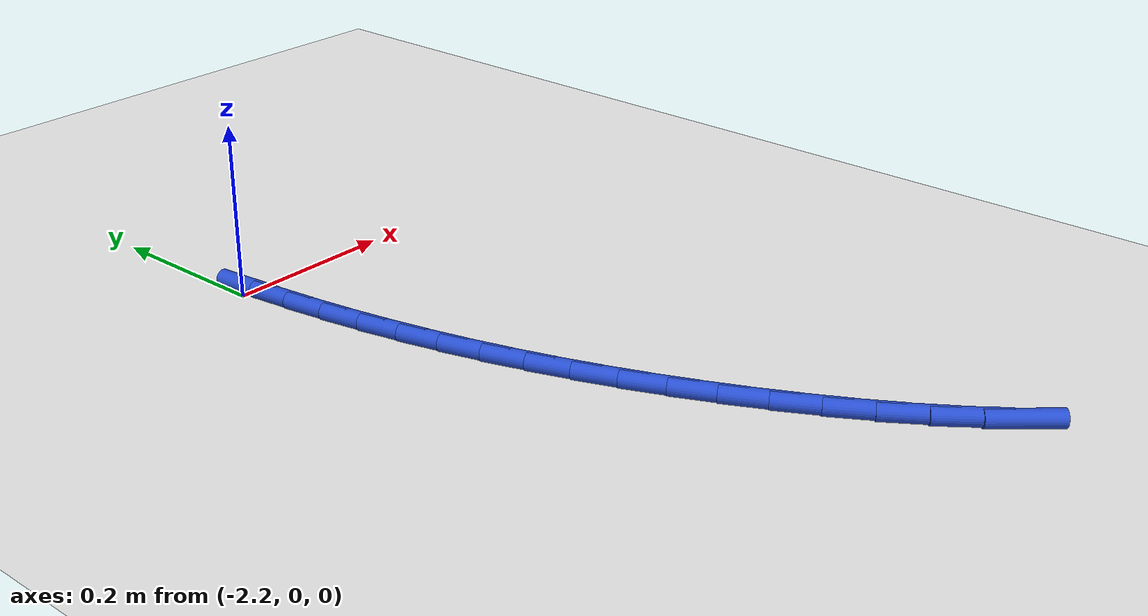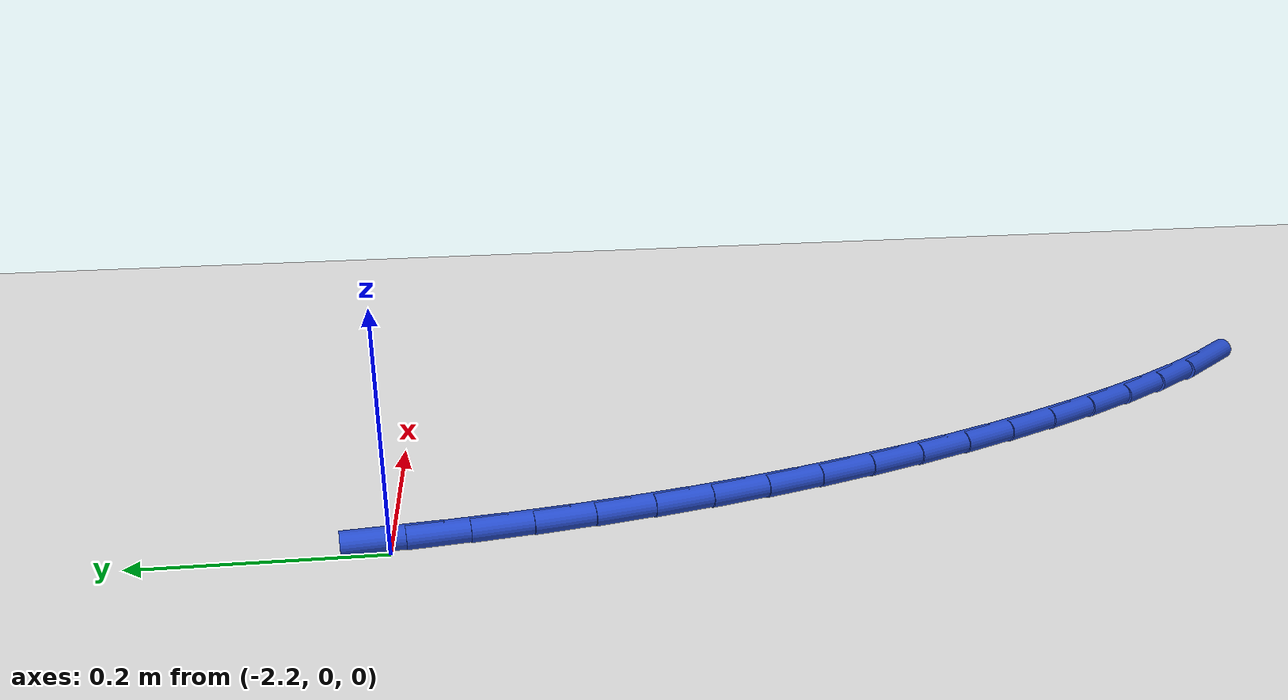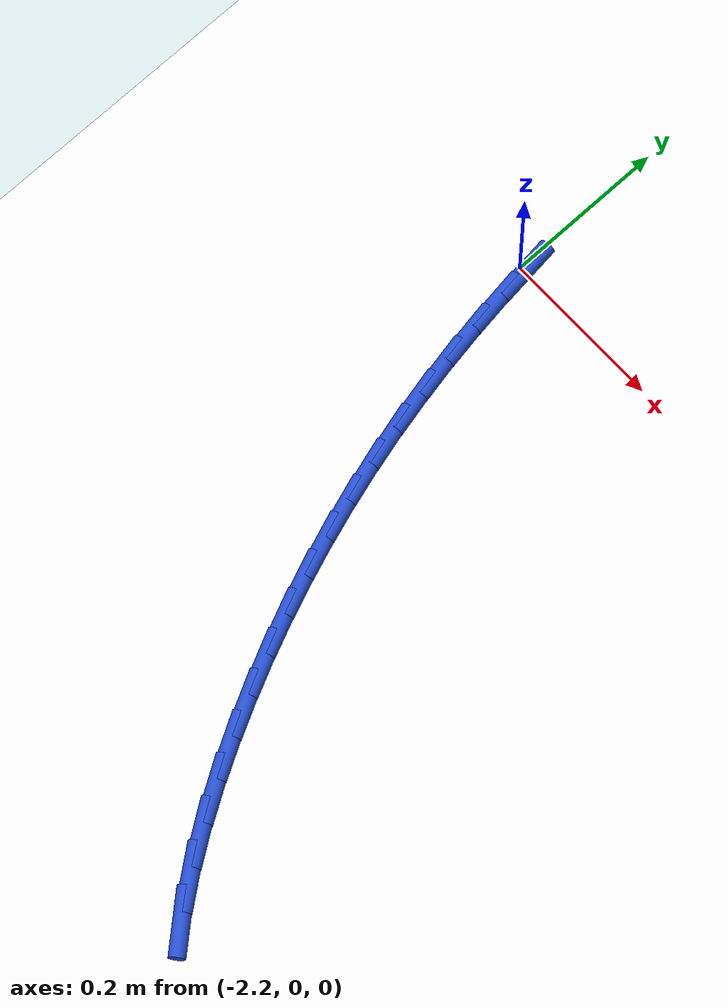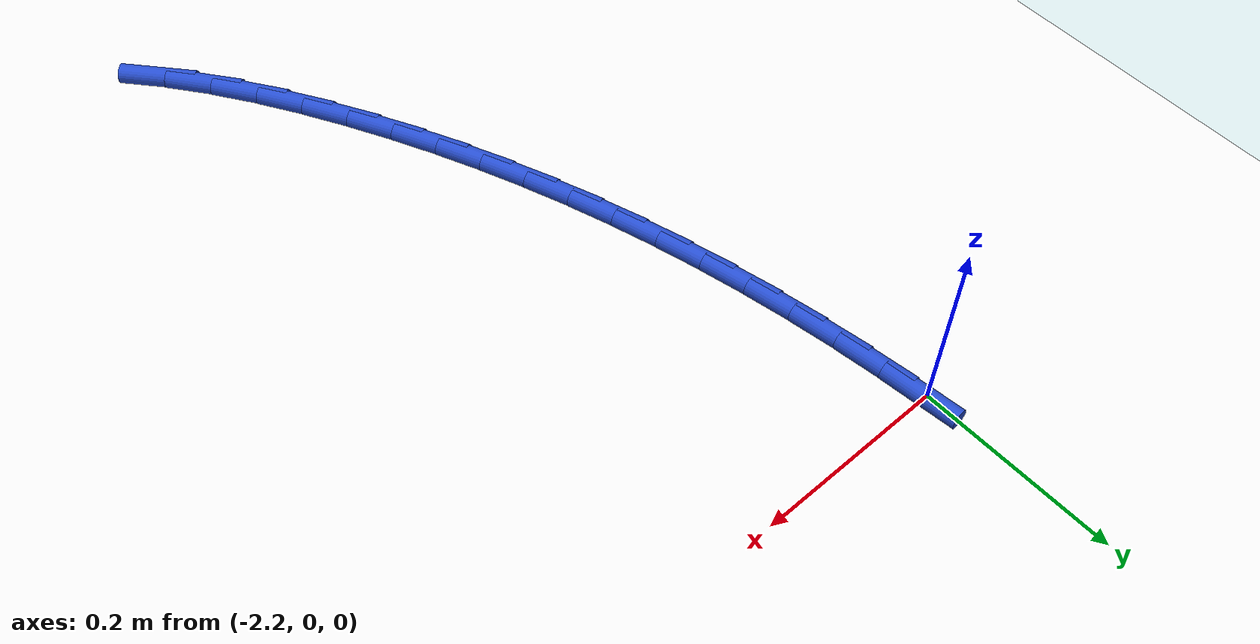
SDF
<sdf version="1.6">
 <world name="default">
  <model name="ground_plane">
   <static>1</static>
   <link name="link">
    <collision name="collision">
     <geometry><plane><normal>0 0 1</normal><size>100 100</size></plane></geometry>
     <surface><friction><ode><mu>100</mu><mu2>50</mu2></ode></friction></surface>
    </collision>
    <visual name="visual">
     <cast_shadows>0</cast_shadows>
     <geometry><plane><normal>0 0 1</normal><size>100 100</size></plane></geometry>
     <material>
      <script><uri>file://media/materials/scripts/gazebo.material</uri><name>Gazebo/WhiteGlow</name></script>
     </material>
    </visual>
   </link>
  </model>
  <model name="line">
   <link name="link_70">
    <pose>-2.1911638966875233 -0.0013804662618174858 0.01 0 1.57 -1.4591810888252337</pose>
    <collision name="collision">
     <geometry><cylinder><radius>0.01</radius><length>0.08</length></cylinder></geometry>
    </collision>
    <visual name="visual">
     <material>
      <script><name>Gazebo/Blue</name><uri>file://media/materials/scripts/gazebo.material</uri></script>
     </material>
     <geometry><cylinder><radius>0.01</radius><length>0.08</length></cylinder></geometry>
    </visual>
   </link>
   <link name="link_71">
    <pose>-2.1856029158798402 -0.05099617177252678 0.01 0 1.57 -1.4303888919285477</pose>
    <collision name="collision">
     <geometry><cylinder><radius>0.01</radius><length>0.08</length></cylinder></geometry>
    </collision>
    <visual name="visual">
     <material>
      <script><name>Gazebo/Blue</name><uri>file://media/materials/scripts/gazebo.material</uri></script>
     </material>
     <geometry><cylinder><radius>0.01</radius><length>0.08</length></cylinder></geometry>
    </visual>
   </link>
   <link name="link_72">
    <pose>-2.17864510572064 -0.1002245284883883 0.01 0 1.57 -1.4011248757612391</pose>
    <collision name="collision">
     <geometry><cylinder><radius>0.01</radius><length>0.08</length></cylinder></geometry>
    </collision>
    <visual name="visual">
     <material>
      <script><name>Gazebo/Blue</name><uri>file://media/materials/scripts/gazebo.material</uri></script>
     </material>
     <geometry><cylinder><radius>0.01</radius><length>0.08</length></cylinder></geometry>
    </visual>
   </link>
   <link name="link_73">
    <pose>-2.170279035817502 -0.14905792635169432 0.01 0 1.57 -1.3714242217989658</pose>
    <collision name="collision">
     <geometry><cylinder><radius>0.01</radius><length>0.08</length></cylinder></geometry>
    </collision>
    <visual name="visual">
     <material>
      <script><name>Gazebo/Blue</name><uri>file://media/materials/scripts/gazebo.material</uri></script>
     </material>
     <geometry><cylinder><radius>0.01</radius><length>0.08</length></cylinder></geometry>
    </visual>
   </link>
   <link name="link_74">
    <pose>-2.1604932757780104 -0.19748875530473486 0.01 0 1.57 -1.341326187886954</pose>
    <collision name="collision">
     <geometry><cylinder><radius>0.01</radius><length>0.08</length></cylinder></geometry>
    </collision>
    <visual name="visual">
     <material>
      <script><name>Gazebo/Blue</name><uri>file://media/materials/scripts/gazebo.material</uri></script>
     </material>
     <geometry><cylinder><radius>0.01</radius><length>0.08</length></cylinder></geometry>
    </visual>
   </link>
   <link name="link_75">
    <pose>-2.1492763952097453 -0.24550940528980222 0.01 0 1.57 -1.3108739201133899</pose>
    <collision name="collision">
     <geometry><cylinder><radius>0.01</radius><length>0.08</length></cylinder></geometry>
    </collision>
    <visual name="visual">
     <material>
      <script><name>Gazebo/Blue</name><uri>file://media/materials/scripts/gazebo.material</uri></script>
     </material>
     <geometry><cylinder><radius>0.01</radius><length>0.08</length></cylinder></geometry>
    </visual>
   </link>
   <link name="link_76">
    <pose>-2.13661696372029 -0.293112266249188 0.01 0 1.57 -1.2801141792896633</pose>
    <collision name="collision">
     <geometry><cylinder><radius>0.01</radius><length>0.08</length></cylinder></geometry>
    </collision>
    <visual name="visual">
     <material>
      <script><name>Gazebo/Blue</name><uri>file://media/materials/scripts/gazebo.material</uri></script>
     </material>
     <geometry><cylinder><radius>0.01</radius><length>0.08</length></cylinder></geometry>
    </visual>
   </link>
   <link name="link_77">
    <pose>-2.1225035509172265 -0.34028972812518377 0.01 0 1.57 -1.2490969828201908</pose>
    <collision name="collision">
     <geometry><cylinder><radius>0.01</radius><length>0.08</length></cylinder></geometry>
    </collision>
    <visual name="visual">
     <material>
      <script><name>Gazebo/Blue</name><uri>file://media/materials/scripts/gazebo.material</uri></script>
     </material>
     <geometry><cylinder><radius>0.01</radius><length>0.08</length></cylinder></geometry>
    </visual>
   </link>
   <link name="link_78">
    <pose>-2.106924726408136 -0.3870341808600816 0.01 0 1.57 -1.2178751661548992</pose>
    <collision name="collision">
     <geometry><cylinder><radius>0.01</radius><length>0.08</length></cylinder></geometry>
    </collision>
    <visual name="visual">
     <material>
      <script><name>Gazebo/Blue</name><uri>file://media/materials/scripts/gazebo.material</uri></script>
     </material>
     <geometry><cylinder><radius>0.01</radius><length>0.08</length></cylinder></geometry>
    </visual>
   </link>
   <link name="link_79">
    <pose>-2.0898690598006024 -0.4333380143961719 0.01 0 1.57 -1.1865038715258132</pose>
    <collision name="collision">
     <geometry><cylinder><radius>0.01</radius><length>0.08</length></cylinder></geometry>
    </collision>
    <visual name="visual">
     <material>
      <script><name>Gazebo/Blue</name><uri>file://media/materials/scripts/gazebo.material</uri></script>
     </material>
     <geometry><cylinder><radius>0.01</radius><length>0.08</length></cylinder></geometry>
    </visual>
   </link>
   <link name="link_80">
    <pose>-2.0713251207022054 -0.47919361867574667 0.01 0 1.57 -1.1550399750461213</pose>
    <collision name="collision">
     <geometry><cylinder><radius>0.01</radius><length>0.08</length></cylinder></geometry>
    </collision>
    <visual name="visual">
     <material>
      <script><name>Gazebo/Blue</name><uri>file://media/materials/scripts/gazebo.material</uri></script>
     </material>
     <geometry><cylinder><radius>0.01</radius><length>0.08</length></cylinder></geometry>
    </visual>
   </link>
   <link name="link_81">
    <pose>-2.0512814787205285 -0.5245933836410976 0.01 0 1.57 -1.1235414662502141</pose>
    <collision name="collision">
     <geometry><cylinder><radius>0.01</radius><length>0.08</length></cylinder></geometry>
    </collision>
    <visual name="visual">
     <material>
      <script><name>Gazebo/Blue</name><uri>file://media/materials/scripts/gazebo.material</uri></script>
     </material>
     <geometry><cylinder><radius>0.01</radius><length>0.08</length></cylinder></geometry>
    </visual>
   </link>
   <link name="link_82">
    <pose>-2.0297267034631528 -0.5695296992345169 0.01 0 1.57 -1.0920606054845883</pose>
    <collision name="collision">
     <geometry><cylinder><radius>0.01</radius><length>0.08</length></cylinder></geometry>
    </collision>
    <visual name="visual">
     <material>
      <script><name>Gazebo/Blue</name><uri>file://media/materials/scripts/gazebo.material</uri></script>
     </material>
     <geometry><cylinder><radius>0.01</radius><length>0.08</length></cylinder></geometry>
    </visual>
   </link>
   <link name="link_83">
    <pose>-2.0066492350739775 -0.613994531556843 0.01 0 1.57 -1.0588065439045538</pose>
    <collision name="collision">
     <geometry><cylinder><radius>0.01</radius><length>0.08</length></cylinder></geometry>
    </collision>
    <visual name="visual">
     <material>
      <script><name>Gazebo/Blue</name><uri>file://media/materials/scripts/gazebo.material</uri></script>
     </material>
     <geometry><cylinder><radius>0.01</radius><length>0.08</length></cylinder></geometry>
    </visual>
   </link>
   <link name="link_84">
    <pose>-1.9819998768605247 -0.6578566302912489 0.01 0 1.57 -1.0191365488200446</pose>
    <collision name="collision">
     <geometry><cylinder><radius>0.01</radius><length>0.08</length></cylinder></geometry>
    </collision>
    <visual name="visual">
     <material>
      <script><name>Gazebo/Blue</name><uri>file://media/materials/scripts/gazebo.material</uri></script>
     </material>
     <geometry><cylinder><radius>0.01</radius><length>0.08</length></cylinder></geometry>
    </visual>
   </link>
   <link name="link_85">
    <pose>-1.9556397979138465 -0.7006912983778127 0.01 0 1.57 -0.9717755368665235</pose>
    <collision name="collision">
     <geometry><cylinder><radius>0.01</radius><length>0.08</length></cylinder></geometry>
    </collision>
    <visual name="visual">
     <material>
      <script><name>Gazebo/Blue</name><uri>file://media/materials/scripts/gazebo.material</uri></script>
     </material>
     <geometry><cylinder><radius>0.01</radius><length>0.08</length></cylinder></geometry>
    </visual>
   </link>
   <link name="link_86">
    <pose>-1.9274171103122404 -0.7420310923812079 0.01 0 1.57 -0.9159497588431387</pose>
    <collision name="collision">
     <geometry><cylinder><radius>0.01</radius><length>0.08</length></cylinder></geometry>
    </collision>
    <visual name="visual">
     <material>
      <script><name>Gazebo/Blue</name><uri>file://media/materials/scripts/gazebo.material</uri></script>
     </material>
     <geometry><cylinder><radius>0.01</radius><length>0.08</length></cylinder></geometry>
    </visual>
   </link>
   <link name="link_87">
    <pose>-1.8971799261340037 -0.7814085688661074 0.01 0 1.57 -0.8508282475264095</pose>
    <collision name="collision">
     <geometry><cylinder><radius>0.01</radius><length>0.08</length></cylinder></geometry>
    </collision>
    <visual name="visual">
     <material>
      <script><name>Gazebo/Blue</name><uri>file://media/materials/scripts/gazebo.material</uri></script>
     </material>
     <geometry><cylinder><radius>0.01</radius><length>0.08</length></cylinder></geometry>
    </visual>
   </link>
  </model>
 </world>
</sdf>
